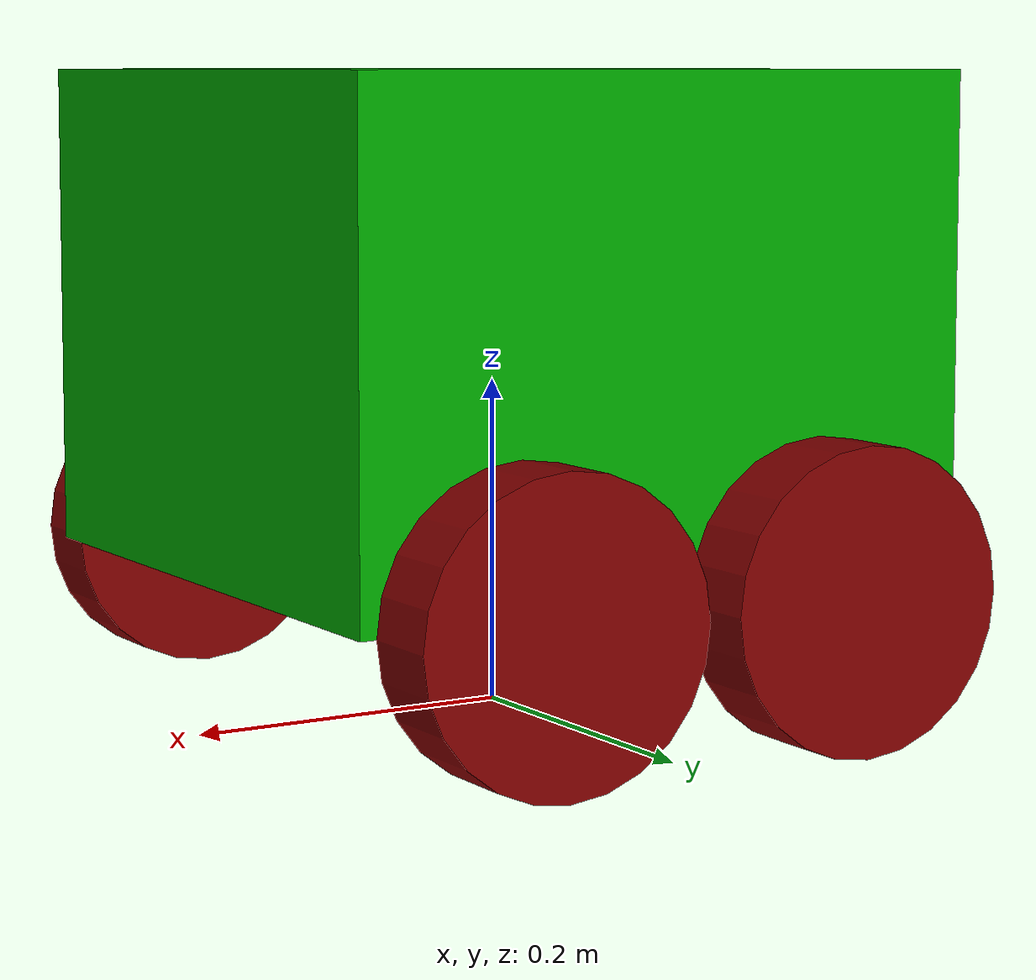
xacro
<?xml version="1.0"?>
<robot name="robot_robot" xmlns:xacro="http://ros.org/wiki/xacro">

  <xacro:include filename="$(find ratna_description)/urdf/robot_param.urdf.xacro" />
  <xacro:include filename="$(find ratna_description)/urdf/mech/base.urdf.xacro" />
  <xacro:include filename="$(find ratna_description)/urdf/mech/wheel.urdf.xacro" />
  <xacro:include filename="$(find ratna_description)/urdf/sensors/imu.urdf.xacro" />
  <xacro:include filename="$(find ratna_description)/urdf/sensors/laser.urdf.xacro" />
  <xacro:include filename="$(find ratna_description)/urdf/sensors/camera.urdf.xacro" />
  <xacro:include filename="$(find ratna_description)/urdf/controllers/omni_drive.urdf.xacro" />

  <xacro:base
    length="${base_length}"
    width="${base_width * 2}"
    height="${base_height}"
    mass="${base_mass}"
    wheel_radius="${wheel_radius}"
    wheel_pos_z="${wheel_pos_z}"
  />

  <xacro:mecanum_wheel
    side="front_left"
    radius="${wheel_radius}"
    width="${wheel_width}"
    pos_x="${wheel_pos_x}"
    pos_y="${wheel_pos_y}"
    pos_z="${wheel_pos_z}"
    mass="${wheel_mass}"
    yaw="0.0"
  />

  <xacro:mecanum_wheel
    side="front_right"
    radius="${wheel_radius}"
    width="${wheel_width}"
    pos_x="${wheel_pos_x}"
    pos_y="${-wheel_pos_y}"
    pos_z="${wheel_pos_z}"
    mass="${wheel_mass}"
    yaw="0.0"
  />
  <xacro:mecanum_wheel
    side="rear_left"
    radius="${wheel_radius}"
    width="${wheel_width}"
    pos_x="${-wheel_pos_x}"
    pos_y="${wheel_pos_y}"
    pos_z="${wheel_pos_z}"
    mass="${wheel_mass}"
    yaw="0.0"
  />

  <xacro:mecanum_wheel
    side="rear_right"
    radius="${wheel_radius}"
    width="${wheel_width}"
    pos_x="${-wheel_pos_x}"
    pos_y="${-wheel_pos_y}"
    pos_z="${wheel_pos_z}"
    mass="${wheel_mass}"
    yaw="0.0"
  />

  <xacro:imu />

  <xacro:omni_drive_controller />
</robot>

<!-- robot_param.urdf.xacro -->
<robot xmlns:xacro="http://ros.org/wiki/xacro">
    <xacro:property name="base_length" value="0.4" />
    <xacro:property name="base_width" value="0.2" />
    <xacro:property name="base_height" value="0.3" />
    <xacro:property name="base_mass" value="10" />

    <xacro:property name="wheel_radius" value="0.09" />
    <xacro:property name="wheel_width" value="0.05" />
    <xacro:property name="wheel_pos_x" value="${base_width/2}" />
    <xacro:property name="wheel_pos_y" value="${base_length/2 + wheel_width/2}" />
    <xacro:property name="wheel_pos_z" value="${-base_height/2}" />
    <xacro:property name="wheel_mass" value="0.6" />
    <xacro:property name="wheel_torque" value="20" />
    <xacro:property name="wheel_yaw" value="0.785398163" />

</robot>

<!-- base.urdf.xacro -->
<robot xmlns:xacro="http://ros.org/wiki/xacro">
    <xacro:macro name="base" params="length width height mass wheel_radius wheel_pos_z">
        <link name="base_footprint" />

        <link name="base_link">
            <visual>
                <origin xyz="0 0 0" rpy="0 0 0" />
                <geometry>
                    <box size="${width} ${length} ${height}" />
                </geometry>
                <material name="green">
                    <color rgba="0.0 0.6627 0.0 1.0" />
                </material>
            </visual>

            <collision>
                <origin xyz="0 0 0" rpy="0 0 0" />
                <geometry>
                    <box size="${width} ${length} ${height}" />
                </geometry>
            </collision>

            <inertial>
                <origin xyz="0 0 0" rpy="0 0 0" />
                <mass value="${mass}" />
                <inertia ixx="${(1/12) * mass * ((width  * width)  + (height * height))}" ixy="0.0"
                    ixz="0.0"
                    iyy="${(1/12) * mass * ((length * length) + (height * height))}" iyz="0.0"
                    izz="${(1/12) * mass * ((length * length) + (width  * width))}" />
            </inertial>
        </link>

        <gazebo reference="base_link">
            <visual>
                <material>
                    <ambient>1 0.0 0.0 1.0</ambient>
                    <diffuse>1 0.0 0.0 1.0</diffuse>
                    <specular>0.99 0.99 0.99 1.0</specular>
                    <emissive>0.0 0.0 0.0 0.0</emissive>
                </material>
            </visual>
        </gazebo>

        <joint name="base_to_footprint" type="fixed">
            <parent link="base_footprint" />
            <child link="base_link" />
            <origin xyz="0 0 ${wheel_radius - wheel_pos_z}" rpy="0 0 0" />
        </joint>
    </xacro:macro>
</robot>

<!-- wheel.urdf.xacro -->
<robot xmlns:xacro="http://ros.org/wiki/xacro">
    <xacro:macro name="mecanum_wheel" params="side radius width pos_x pos_y pos_z mass yaw">
        <link name="${side}_wheel_link">
            <visual>
                <origin xyz="0 0 0" rpy="${pi/2} 0 0" />
                <geometry>
                    <cylinder radius="${radius}" length="${width}" />
                </geometry>
                <material name="red">
                    <color rgba="0.5 0.0 0.0 1.0" />
                </material>
            </visual>
            <collision>
                <origin xyz="0 0 0" rpy="${pi/2} 0 0" />
                <geometry>
                    <cylinder radius="${radius}" length="${width}" />
                </geometry>
            </collision>

            <inertial>
                <origin xyz="0 0 0" rpy="0 0 0" />
                <mass value="${mass}" />
                <inertia ixx="${(2/5) * mass * (radius * radius)}" ixy="0" ixz="0"
                    iyy="${(2/5) * mass * (radius * radius)}" iyz="0"
                    izz="${(2/5) * mass * (radius * radius)}" />
            </inertial>
        </link>

        <gazebo reference="${side}_wheel_link">
            <mu1>0.01</mu1>
            <mu2>0.01</mu2>
        </gazebo>

        <gazebo reference="${side}_wheel_link">
            <visual>
                <material>
                    <ambient>0.02 0.02 0.02 1.0</ambient>
                    <diffuse>0.05 0.05 0.05 1.0</diffuse>
                    <specular>0.1764 0.4588 0.8509 1.0</specular>
                    <emissive>0.0 0.0 0.0 0.0</emissive>
                </material>
            </visual>
        </gazebo>
        <joint name="${side}_wheel_joint" type="continuous">
            <axis xyz="0 1 0" />
            <parent link="base_link" />
            <child link="${side}_wheel_link" />
            <origin xyz="${pos_x} ${pos_y} ${pos_z}" rpy="0 0 ${yaw}" />
        </joint>
    </xacro:macro>
</robot>

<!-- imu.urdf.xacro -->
<robot xmlns:xacro="http://ros.org/wiki/xacro">
  <xacro:macro name="imu">
    <link name="imu_link" />

    <joint name="imu_to_base_link" type="fixed">
      <parent link="base_link" />
      <child link="imu_link" />
      <origin xyz="0 0 0" rpy="0 0 0" />
    </joint>

    <gazebo reference="imu_link">
      <gravity>true</gravity>
      <sensor name="imu_sensor" type="imu">
        <always_on>true</always_on>
        <update_rate>20</update_rate>
        <visualize>true</visualize>
        <topic>__default_topic__</topic>
        <plugin filename="libgazebo_ros_imu_sensor.so" name="imu_plugin">
          <ros>
            <remapping>~/out:=imu/data</remapping>
          </ros>
          <topicName>imu/data</topicName>
          <bodyName>imu_link</bodyName>
          <updateRateHZ>10.0</updateRateHZ>
          <xyzOffset>0 0 0</xyzOffset>
          <rpyOffset>0 0 0</rpyOffset>
          <frameName>imu_link</frameName>
          <initialOrientationAsReference>false</initialOrientationAsReference>
        </plugin>
        <pose>0 0 0 0 0 0</pose>
      </sensor>
    </gazebo>
  </xacro:macro>
</robot>
